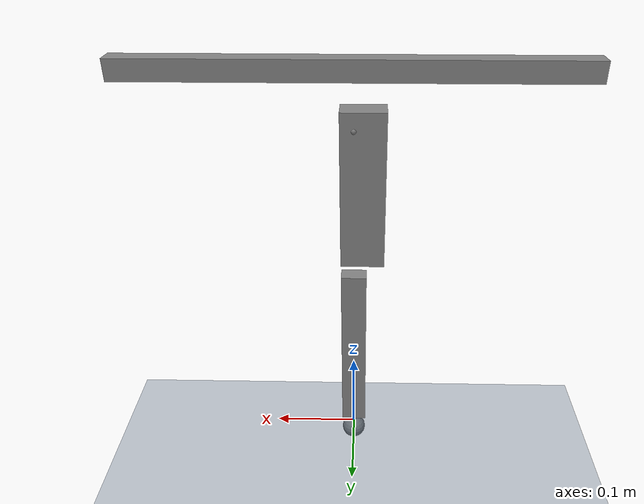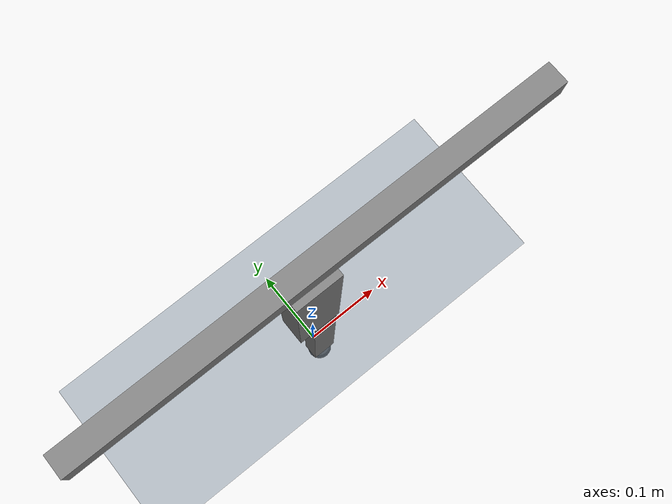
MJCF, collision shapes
<mujoco model="hopper_scene">
  <include file="hopper_model.xml"/>

  <statistic center="0 0 0.1" extent="0.8"/>

  <visual>
    <headlight diffuse="0.6 0.6 0.6" ambient="0.3 0.3 0.3" specular="0 0 0"/>
    <rgba haze="0.15 0.25 0.35 1"/>
    <global azimuth="-130" elevation="-20"/>
  </visual>

  <asset>
    <texture type="skybox" builtin="gradient" rgb1="0.3 0.5 0.7" rgb2="0 0 0" width="512" height="3072"/>
    <texture type="2d" name="groundplane" builtin="checker" mark="edge" rgb1="0.2 0.3 0.4" rgb2="0.1 0.2 0.3"
      markrgb="0.8 0.8 0.8" width="300" height="300"/>
    <material name="groundplane" texture="groundplane" texuniform="true" texrepeat="5 5" reflectance="0.2"/>
  </asset>

  <worldbody>
    <light pos="0 0 1.5" dir="0 0 -1" directional="true"/>
    <geom name="floor" size="0 0 0.05" type="plane" material="groundplane"/>
  </worldbody>

</mujoco>

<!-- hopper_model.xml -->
<mujoco model="hopper_model">
  <compiler angle="radian" meshdir="meshes" autolimits="true" />
  <option cone="elliptic" impratio="100" />

  <default>
    <default class="hopper">
      <geom friction="1.0" margin="0.001" condim="1"/>
      <joint axis="0 1 0" damping="0.1" armature="0.01" frictionloss="0.2"/>
      <motor ctrlrange="-30 30"/>
      <default class="hip">
        <joint range="0 1.5708"/>
      </default>
      <default class="knee">
        <joint range="-3.1415 -0.85"/>
      </default>
      <default class="visual">
        <geom type="mesh" contype="0" conaffinity="0" group="2"/>
      </default>
      <default class="collision">
        <geom group="3"/>
      </default>
    </default>
  </default>

  <keyframe>
    <key name="0" qpos="0 0 0 0.9 -1.8" />
  </keyframe>

  <worldbody>
    <body name="Base" pos="0 0 0.4" quat="1 0 0 0">
      <joint name="x_joint" type="slide" axis="1 0 0" range="-10 10" />
      <joint name="z_joint" type="slide" axis="0 0 1" range="-0.4 5" />
      <joint name="pitch_joint" type="hinge" axis="0 1 0"/>

      <body name="Torso" childclass="hopper"/>
      <geom type="mesh" mesh="Torso" material="metal" class="visual" />
      <geom size="0.25 0.0115 0.0115" pos="0 -0.012 0.06" quat="1 0 0 0" type="box" class="collision" />
      <inertial
        pos="0.00012619 0.0021568 0.039743"
        mass="2."
        diaginertia="0.025 0.05 0.025"
        />

      <site name="imu" pos="0 0 0" />

      <body name="Thigh" pos="0 -0.026 0">
        <joint name="thigh_joint" class="hip" axis="0 1 0"/>
        <geom type="mesh" mesh="Thigh" material="metal" class="visual"/>
        <geom size="0.025 0.015 0.09" pos="-0.01 0.015 -0.07" quat="1 0 0 0" type="box" class="collision" />
        <inertial pos="0.0010373 -0.0083556 -0.029921" quat="0.704019 0.0129996 0.00933427 0.710001" mass="0.41602" diaginertia="0.00119604 0.00104212 0.000210614"/>

        <body name="Shank" pos="0 0.013 -0.22">
          <joint name="calf_joint" class="knee" axis="0 1 0"/>
          <geom type="mesh" mesh="Shank" material="metal" class="visual"/>
          <geom size="0.015 0.01 0.11" pos="0 0 -0.07" quat="1 0 0 0" type="box" class="collision" />
          <inertial pos="-0.000239033 0.000233479 -0.0752972" quat="0.706961 -0.00204689 -0.00156268 0.707248" mass="0.116643" diaginertia="0.000594634 0.000591483 5.24161e-06"/>

          <body name="Foot" pos="0 0 -0.20193" quat="0.707105 0 0 -0.707108">
            <geom type="mesh" mesh="Foot" material="metal" class="visual"/>
            <geom size="0.015" pos="0 0 0" priority="1" condim="6"
            friction="1.0 0.02 0.01" class="collision"/>
            <inertial
              pos="5.2042E-18 -4.2156E-19 -0.001849"
              mass="0.015263"
              fullinertia="1.9449E-06 1.9397E-06 1.2829E-06 -1.3565E-24 1.158E-21 -2.4125E-22"
              />

            <site name="foot_site" pos="0 0 0" size="0.015"/>
          </body>
        </body>
      </body>
    </body>
  </worldbody>

  <actuator>
    <motor class="hip" name="thigh" joint="thigh_joint" />
    <motor class="knee" name="calf" joint="calf_joint" />
  </actuator>

  <sensor>
    <jointpos name="thigh_pos" joint="thigh_joint" noise="0.01"/>
    <jointpos name="calf_pos" joint="calf_joint" noise="0.01"/>

    <jointvel name="thigh_vel" joint="thigh_joint" noise="0.01"/>
    <jointvel name="calf_vel" joint="calf_joint" noise="0.01"/>

    <jointactuatorfrc name="thigh_torque" joint="thigh_joint" noise="0.01"/>
    <jointactuatorfrc name="calf_torque" joint="calf_joint" noise="0.01"/>

    <framequat name="imu_quat" objtype="site" objname="imu" noise="0.01"/>
    <gyro name="imu_gyro" site="imu" noise="0.01"/>
    <accelerometer name="imu_acc" site="imu" noise="0.01"/>

    <framepos name="frame_pos" objtype="site" objname="imu" noise="0.01"/>
    <framelinvel name="frame_vel" objtype="site" objname="imu" noise="0.01"/>

    <touch name="foot_force" site="foot_site" noise="0.01"/>
  </sensor>

  <asset>
    <material name="metal" rgba=".9 .95 .95 1" />
    <material name="black" rgba="0 0 0 1" />
    <material name="white" rgba="1 1 1 1" />
    <material name="gray" rgba="0.671705 0.692426 0.774270 1" />

    <mesh file="Torso.STL" />
    <mesh file="Thigh.STL" />
    <mesh file="Shank.STL" />
    <mesh file="Foot.STL" />
    <mesh file="Coupler.STL" />
  </asset>

</mujoco>
